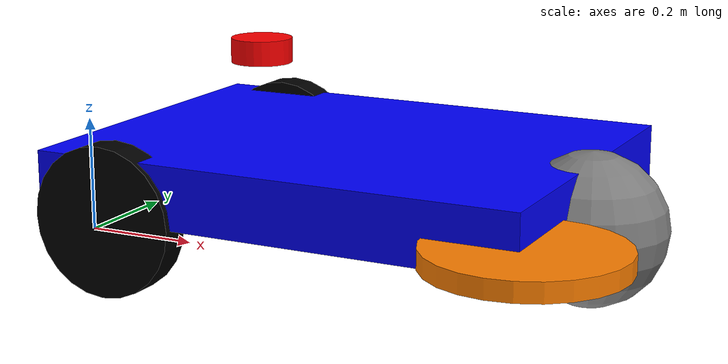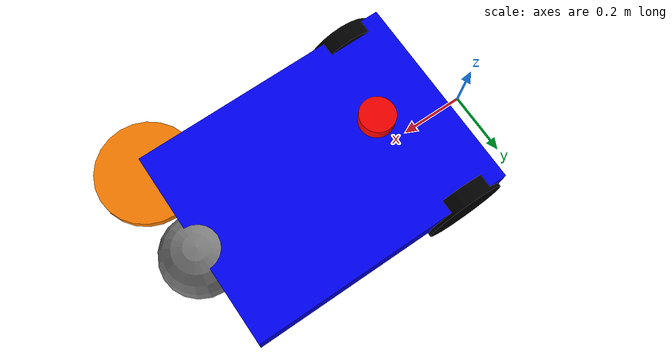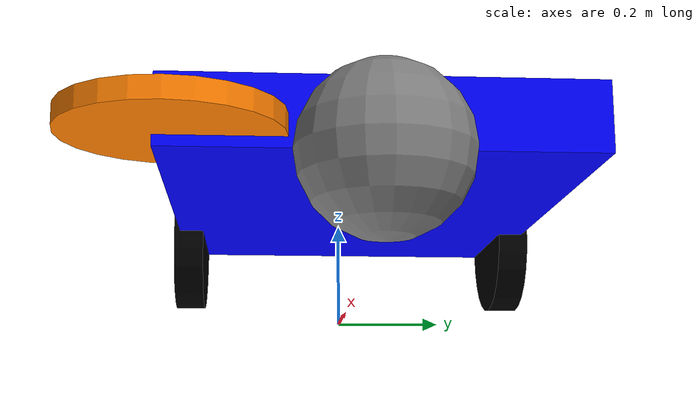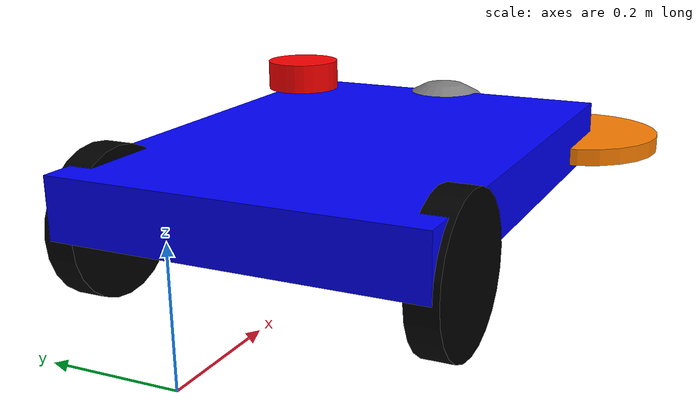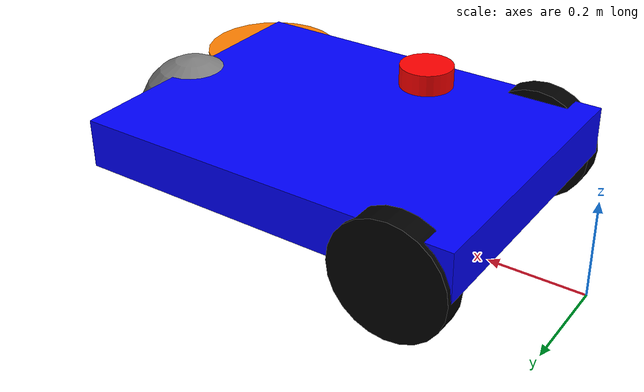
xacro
<?xml version="1.0"?>
<robot name="rectangular_robot" xmlns:xacro="http://ros.org/wiki/xacro">

  <!-- Include lidar xacro files -->
  <xacro:include filename="$(find create_description)/urdf/lidar.urdf.xacro" />
  <xacro:include filename="$(find create_description)/urdf/lidar_gazebo.urdf.xacro" />

  <!-- Material Definitions (must be global for RViz) -->
  <material name="blue">
    <color rgba="0 0 1 1"/>
  </material>
  <material name="black">
    <color rgba="0 0 0 1"/>
  </material>
  <material name="gray">
    <color rgba="0.5 0.5 0.5 1"/>
  </material>
  <material name="orange">
    <color rgba="1 0.5 0 1"/>
  </material>
  <material name="dark_gray">
    <color rgba="0.3 0.3 0.3 1"/>
  </material>

  <!-- Properties (parameters) -->
  <xacro:property name="PI" value="3.1415926535897931" />

  <!-- Base dimensions -->
  <xacro:property name="base_length" value="0.8" />
  <xacro:property name="base_width" value="0.6" />  <!-- Adjusted to not extend past wheels -->
  <xacro:property name="base_height" value="0.1" />
  <xacro:property name="base_mass" value="25.0" />

  <!-- Wheel properties -->
  <xacro:property name="wheel_radius" value="0.12" />
  <xacro:property name="wheel_width" value="0.05" />
  <xacro:property name="wheel_mass" value="2.0" />
  <xacro:property name="wheel_separation" value="0.57" />  <!-- Distance between rear wheels -->
  <!-- Note: Rear wheels are forward by one wheel radius (origin is between rear wheels) -->

  <xacro:property name="caster_radius" value="${wheel_radius}" />
  <xacro:property name="caster_mass" value="0.5" />
  <!-- Caster at front of robot (base extends from x=0 to x=base_length, center at base_length/2) -->
  <xacro:property name="caster_x_offset" value="${base_length}" />  <!-- Front edge of base -->

  <!-- Sweeping wheel properties -->
  <xacro:property name="sweep_wheel_radius" value="0.15" />
  <xacro:property name="sweep_wheel_length" value="0.03" />
  <!-- Non-physical visual marker only; Nav2 footprint handles avoidance envelope. -->
  <xacro:property name="sweep_wheel_mass" value="0.0001" />
  <!-- Sweep wheel at front of robot -->
  <xacro:property name="sweep_wheel_x" value="${base_length}" />  <!-- Front edge of base -->
  <xacro:property name="sweep_wheel_y" value="-0.275" />  <!-- Negative y = right side -->

  <!-- Macro for a wheel: axis must differ on left vs right so +joint velocity = forward for both (RViz). -->
  <xacro:macro name="wheel" params="name x y z axis_xyz">
    <link name="${name}">
      <visual>
        <origin xyz="0 0 0" rpy="${PI/2} 0 0"/>
        <geometry>
          <cylinder radius="${wheel_radius}" length="${wheel_width}"/>
        </geometry>
        <material name="black"/>
      </visual>
      <collision>
        <origin xyz="0 0 0" rpy="${PI/2} 0 0"/>
        <geometry>
          <cylinder radius="${wheel_radius}" length="${wheel_width}"/>
        </geometry>
      </collision>
      <inertial>
        <origin xyz="0 0 0" rpy="0 0 0"/>
        <mass value="${wheel_mass}"/>
        <inertia ixx="0.1" ixy="0" ixz="0" iyy="0.1" iyz="0" izz="0.1"/>
      </inertial>
    </link>

    <joint name="${name}_joint" type="continuous">
      <parent link="base_link"/>
      <child link="${name}"/>
      <origin xyz="${x} ${y} ${z}" rpy="0 0 0"/>
      <axis xyz="${axis_xyz}"/>
    </joint>
  </xacro:macro>

  <!-- Base Link -->
  <!-- Base origin is at ground level, centered between rear wheels -->
  <link name="base_link">
    <visual>
      <!-- In simulation, keep chassis above ground by wheel radius to avoid floor dragging. -->
      <origin xyz="${base_length/2} 0 ${wheel_radius + base_height/2}" rpy="0 0 0"/>
      <geometry>
        <box size="${base_length} ${base_width} ${base_height}"/>
      </geometry>
      <material name="blue"/>
    </visual>
    <collision>
      <origin xyz="${base_length/2} 0 ${wheel_radius + base_height/2}" rpy="0 0 0"/>
      <geometry>
        <box size="${base_length} ${base_width} ${base_height}"/>
      </geometry>
    </collision>
    <inertial>
      <origin xyz="${base_length/2} 0 ${wheel_radius + base_height/2}" rpy="0 0 0"/>
      <mass value="${base_mass}"/>
      <inertia ixx="1.0" ixy="0" ixz="0" iyy="1.0" iyz="0" izz="1.0"/>
    </inertial>
  </link>

  <!-- Rear wheels for Gazebo diff-drive: keep both joint axes aligned (+Y) so forward cmd drives straight. -->
  <xacro:wheel name="left_rear_wheel" x="${wheel_radius}" y="${wheel_separation/2}" z="${wheel_radius}" axis_xyz="0 1 0"/>
  <xacro:wheel name="right_rear_wheel" x="${wheel_radius}" y="${-wheel_separation/2}" z="${wheel_radius}" axis_xyz="0 1 0"/>
  <!-- Front Caster Wheel -->
  <link name="front_caster_wheel">
    <visual>
      <origin xyz="0 0 0" rpy="0 0 0"/>
      <geometry>
        <sphere radius="${caster_radius}"/>
      </geometry>
      <material name="gray"/>
    </visual>
    <collision>
      <origin xyz="0 0 0" rpy="0 0 0"/>
      <geometry>
        <sphere radius="${caster_radius}"/>
      </geometry>
    </collision>
    <inertial>
      <origin xyz="0 0 0" rpy="0 0 0"/>
      <mass value="${caster_mass}"/>
      <inertia ixx="0.01" ixy="0" ixz="0" iyy="0.01" iyz="0" izz="0.01"/>
    </inertial>
  </link>

  <joint name="front_caster_wheel_joint" type="fixed">
    <parent link="base_link"/>
    <child link="front_caster_wheel"/>
    <!-- Sphere center at same z as rear wheel centers (wheel_radius) so all contacts lie on z=0 when base is level. -->
    <origin xyz="${caster_x_offset} 0 ${wheel_radius}" rpy="0 0 0"/>
  </joint>

  <!-- Front caster: zero Coulomb friction (ideal ball; avoids scrub braking turns). -->
  <gazebo reference="front_caster_wheel">
    <mu1>0.0</mu1>
    <mu2>0.0</mu2>
    <!-- Dampen the rigid sphere/ground contact.  Gazebo's stiff defaults can
         inject vertical energy into a heavy three-contact-point chassis. -->
    <kp>100000.0</kp>
    <kd>100.0</kd>
    <maxVel>0.05</maxVel>
    <minDepth>0.001</minDepth>
  </gazebo>

  <!-- Driven wheels need predictable longitudinal contact and damped normal
       contact; otherwise the diff-drive controller can excite chassis hop. -->
  <gazebo reference="left_rear_wheel">
    <mu1>1.0</mu1>
    <mu2>1.0</mu2>
    <kp>100000.0</kp>
    <kd>100.0</kd>
    <maxVel>0.05</maxVel>
    <minDepth>0.001</minDepth>
  </gazebo>
  <gazebo reference="right_rear_wheel">
    <mu1>1.0</mu1>
    <mu2>1.0</mu2>
    <kp>100000.0</kp>
    <kd>100.0</kd>
    <maxVel>0.05</maxVel>
    <minDepth>0.001</minDepth>
  </gazebo>

  <!-- Sweeping Wheel (parallel to floor - horizontal cylinder) -->
  <link name="sweeping_wheel">
    <visual>
      <origin xyz="0 0 0" rpy="0 0 0"/>
      <geometry>
        <cylinder radius="${sweep_wheel_radius}" length="${sweep_wheel_length}"/>
      </geometry>
      <material name="orange"/>
    </visual>
    <!-- No collision on purpose: keep this link out of Gazebo contact dynamics. -->
    <inertial>
      <origin xyz="0 0 0" rpy="0 0 0"/>
      <mass value="${sweep_wheel_mass}"/>
      <inertia ixx="1e-6" ixy="0" ixz="0" iyy="1e-6" iyz="0" izz="1e-6"/>
    </inertial>
  </link>

  <joint name="sweeping_wheel_joint" type="fixed">
    <parent link="base_link"/>
    <child link="sweeping_wheel"/>
    <!-- Keep sweeper clear of floor contact in simulation. -->
    <origin xyz="${sweep_wheel_x} ${sweep_wheel_y} ${sweep_wheel_radius}" rpy="0 0 0"/>
  </joint>

  <!-- Base Footprint (for navigation) - positioned at origin between rear wheels -->
  <link name="base_footprint"/>

  <joint name="base_footprint_joint" type="fixed">
    <parent link="base_footprint"/>
    <child link="base_link"/>
    <!-- base_footprint is at ground level (z=0) at the midpoint between rear wheels -->
    <!-- base_link origin is also at ground level, so no z offset needed -->
    <origin xyz="${wheel_radius} 0 0" rpy="0 0 0"/>
  </joint>

  <!-- Keep lidar directly over rear axle (real robot mounting). -->
  <xacro:lidar parent_link="base_link" x="${wheel_radius + 0.11}" y="0" z="${base_height + 0.25}"/>

  <!-- IMU frame for a chassis-mounted MPU-6050, centered and 0.15 m forward of the rear axle.
       Assumes board axes match robot x-forward, y-left, z-up. -->
  <link name="imu_link"/>

  <joint name="imu_joint" type="fixed">
    <parent link="base_link"/>
    <child link="imu_link"/>
    <origin xyz="${wheel_radius + 0.15} 0 ${base_height + 0.05}" rpy="0 0 0"/>
  </joint>

  <!-- Gazebo diff-drive for Classic simulation -->
  <gazebo>
    <plugin name="diff_drive_controller" filename="libgazebo_ros_diff_drive.so">
      <ros>
        <remapping>cmd_vel:=cmd_vel</remapping>
        <remapping>odom:=odom</remapping>
      </ros>
      <update_rate>50</update_rate>
      <left_joint>left_rear_wheel_joint</left_joint>
      <right_joint>right_rear_wheel_joint</right_joint>
      <wheel_separation>${wheel_separation}</wheel_separation>
      <wheel_diameter>${2.0 * wheel_radius}</wheel_diameter>
      <max_wheel_torque>30.0</max_wheel_torque>
      <max_wheel_acceleration>3.0</max_wheel_acceleration>
      <command_timeout>0.25</command_timeout>
      <publish_odom>true</publish_odom>
      <publish_odom_tf>true</publish_odom_tf>
      <publish_wheel_tf>false</publish_wheel_tf>
      <odometry_frame>odom</odometry_frame>
      <robot_base_frame>base_footprint</robot_base_frame>
      <!-- Leave odometry_source unset for broad Gazebo Classic compatibility. -->
    </plugin>

    <!-- Publish simulated wheel joint states so robot_state_publisher can produce wheel TF in RViz. -->
    <plugin name="joint_state_publisher" filename="libgazebo_ros_joint_state_publisher.so">
      <ros>
        <remapping>~/out:=joint_states</remapping>
      </ros>
      <update_rate>50</update_rate>
      <joint_name>left_rear_wheel_joint</joint_name>
      <joint_name>right_rear_wheel_joint</joint_name>
    </plugin>
  </gazebo>

  <!-- Gazebo plugin for lidar simulation -->
  <xacro:sim_lidar/>

</robot>

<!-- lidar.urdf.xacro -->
<robot xmlns:xacro="http://www.ros.org/wiki/xacro">

  <!-- Properties -->
  <xacro:property name="PI" value="3.1415926535897931" />

  <!-- Material Definitions -->
  <material name="red">
    <color rgba="1 0 0 1"/>
  </material>

  <!-- Macro for lidar unit -->
  <xacro:macro name="lidar" params="parent_link x y z">
    <!-- Joint connecting lidar to parent -->
    <!-- Rotated 180 degrees around Z axis (yaw = PI) to flip scan direction -->
    <joint name="laser_joint" type="fixed">
      <parent link="${parent_link}"/>
      <child link="laser_frame"/>
      <origin xyz="${x} ${y} ${z}" rpy="0 0 ${PI}"/>
    </joint>

    <!-- Lidar Link -->
    <link name="laser_frame">
      <visual>
        <origin xyz="0 0 0" rpy="0 0 0"/>
        <geometry>
          <cylinder radius="0.05" length="0.04"/>
        </geometry>
        <material name="red"/>
      </visual>
      <collision>
        <origin xyz="0 0 0" rpy="0 0 0"/>
        <geometry>
          <cylinder radius="0.05" length="0.04"/>
        </geometry>
      </collision>
      <inertial>
        <origin xyz="0 0 0" rpy="0 0 0"/>
        <mass value="0.1"/>
        <inertia ixx="0.001" ixy="0" ixz="0" iyy="0.001" iyz="0" izz="0.001"/>
      </inertial>
    </link>
  </xacro:macro>

</robot>
